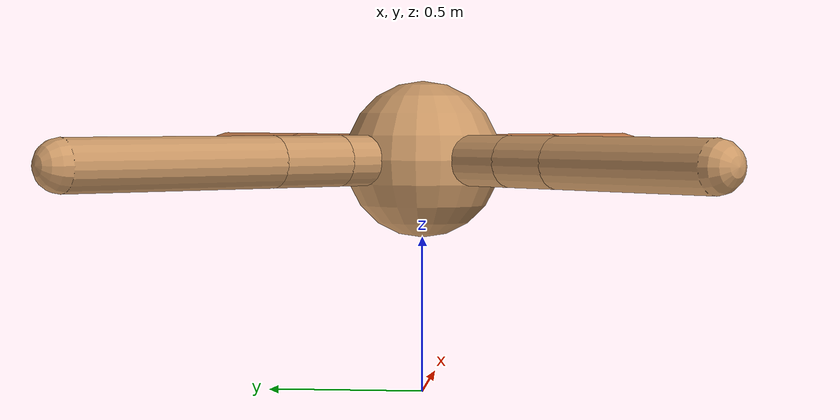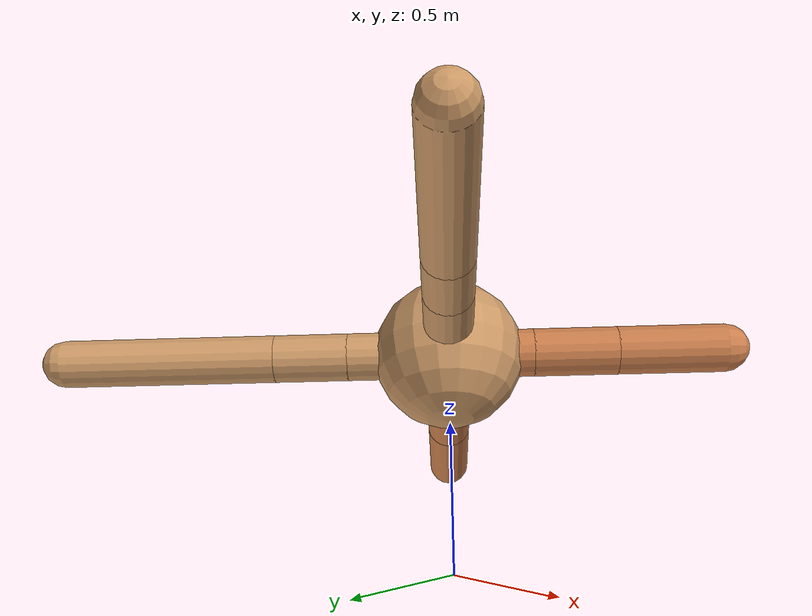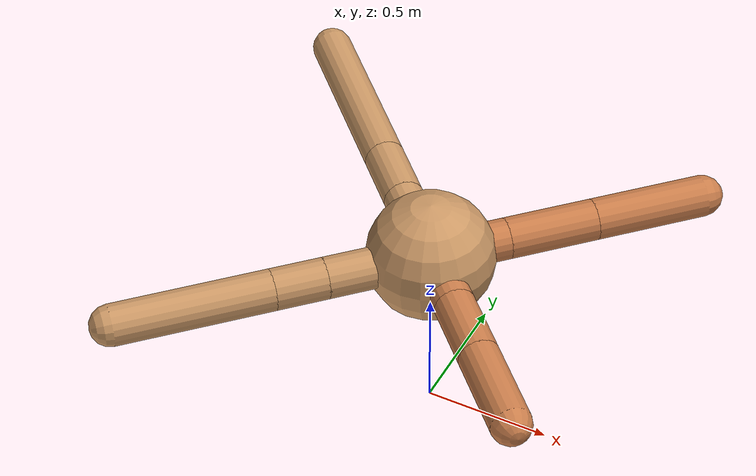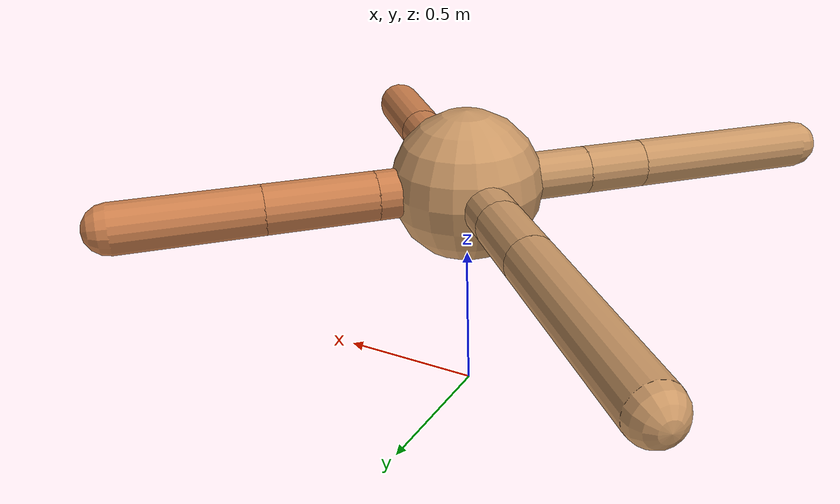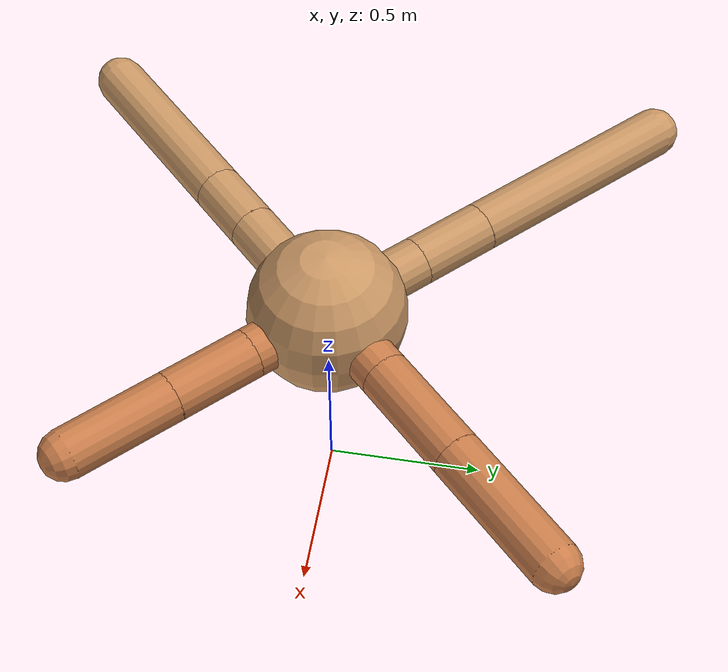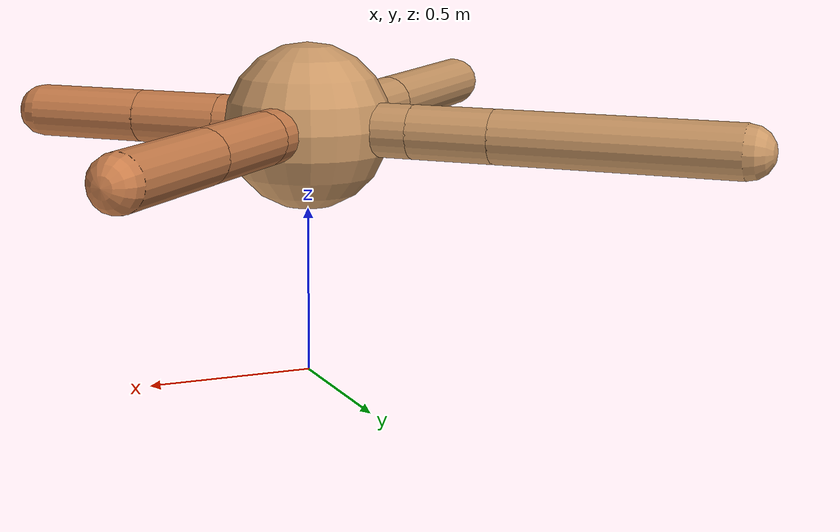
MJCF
<mujoco model="ant">
  <compiler angle="degree" coordinate="local" inertiafromgeom="true" />
  <option integrator="RK4" timestep="0.01" />
  <custom>
    <numeric data="0.0 0.0 0.55 1.0 0.0 0.0 0.0 0.0 1.0 0.0 -1.0 0.0 -1.0 0.0 1.0" name="init_qpos" />
  </custom>
  <default>
    <joint armature="1" damping="1" limited="true" />
    <geom conaffinity="0" condim="3" density="5.0" friction="1.5 0.1 0.1" margin="0.01" rgba="0.8 0.6 0.4 1" />
  </default>
  <worldbody>
    <body name="torso" pos="0 0 0.75">
      <geom name="torso_geom" pos="0 0 0" size="0.25" type="sphere" />

      <body name="front_left_leg" pos="0 0 0">
        <geom fromto="0.0 0.0 0.0 0.213469796083798 0.213469796083798 0.0" name="aux_1_geom" size="0.08" type="capsule" rgba=".8 .5 .3 1" />
        <body name="aux_1" pos="0.213469796083798 0.213469796083798 0.0">
          <joint axis="0 0 1" name="hip_1" pos="0.0 0.0 0.0" range="-40 40" type="hinge" />
          <geom fromto="0.0 0.0 0.0 0.24896940532145076 0.24896940532145076 0.0" name="left_leg_geom" size="0.08" type="capsule" rgba=".8 .5 .3 1" />
          <body pos="0.24896940532145076 0.24896940532145076 0.0" name="front_left_foot">
            <joint axis="-1 1 0" name="ankle_1" pos="0.0 0.0 0.0" range="30 100" type="hinge" />
            <geom fromto="0.0 0.0 0.0 0.3167592123567892 0.3167592123567892 0.0" name="left_ankle_geom" size="0.08" type="capsule" rgba=".8 .5 .3 1" />
          </body>
        </body>
      </body>
      <body name="front_right_leg" pos="0 0 0">
        <geom fromto="0.0 0.0 0.0 -0.23933368342074113 0.23933368342074113 0.0" name="aux_2_geom" size="0.08" type="capsule" />
        <body name="aux_2" pos="-0.23933368342074113 0.23933368342074113 0.0">
          <joint axis="0 0 1" name="hip_2" pos="0.0 0.0 0.0" range="-40 40" type="hinge" />
          <geom fromto="0.0 0.0 0.0 -0.1757616252842291 0.1757616252842291 0.0" name="right_leg_geom" size="0.08" type="capsule" />
          <body pos="-0.1757616252842291 0.1757616252842291 0.0" name="front_right_foot">
            <joint axis="1 1 0" name="ankle_2" pos="0.0 0.0 0.0" range="-100 -30" type="hinge" />
            <geom fromto="0.0 0.0 0.0 -0.5133589565015771 0.5133589565015771 0.0" name="right_ankle_geom" size="0.08" type="capsule" />
          </body>
        </body>
      </body>
      <body name="left_back_leg" pos="0 0 0">
        <geom fromto="0.0 0.0 0.0 -0.29342175729503606 -0.29342175729503606 0.0" name="aux_3_geom" size="0.08" type="capsule" />
        <body name="aux_3" pos="-0.29342175729503606 -0.29342175729503606 0.0">
          <joint axis="0 0 1" name="hip_3" pos="0.0 0.0 0.0" range="-40 40" type="hinge" />
          <geom fromto="0.0 0.0 0.0 -0.14451691622331692 -0.14451691622331692 0.0" name="back_leg_geom" size="0.08" type="capsule" />
          <body pos="-0.14451691622331692 -0.14451691622331692 0.0" name="left_back_foot">
            <joint axis="-1 1 0" name="ankle_3" pos="0.0 0.0 0.0" range="-100 -30" type="hinge" />
            <geom fromto="0.0 0.0 0.0 -0.43656986550326976 -0.43656986550326976 0.0" name="third_ankle_geom" size="0.08" type="capsule" />
          </body>
        </body>
      </body>
      <body name="right_back_leg" pos="0 0 0">
        <geom fromto="0.0 0.0 0.0 0.20089970666462867 -0.20089970666462867 0.0" name="aux_4_geom" size="0.08" type="capsule" rgba=".8 .5 .3 1" />
        <body name="aux_4" pos="0.20089970666462867 -0.20089970666462867 0.0">
          <joint axis="0 0 1" name="hip_4" pos="0.0 0.0 0.0" range="-40 40" type="hinge" />
          <geom fromto="0.0 0.0 0.0 0.19575771106549303 -0.19575771106549303 0.0" name="rightback_leg_geom" size="0.08" type="capsule" rgba=".8 .5 .3 1" />
          <body pos="0.19575771106549303 -0.19575771106549303 0.0" name="right_back_foot">
            <joint axis="1 1 0" name="ankle_4" pos="0.0 0.0 0.0" range="30 100" type="hinge" />
            <geom fromto="0.0 0.0 0.0 0.2502044813819787 -0.2502044813819787 0.0" name="fourth_ankle_geom" size="0.08" type="capsule" rgba=".8 .5 .3 1" />
          </body>
        </body>
      </body>
    </body>
  </worldbody>
  <actuator>
    <motor ctrllimited="true" ctrlrange="-1.0 1.0" joint="hip_4" gear="150" />
    <motor ctrllimited="true" ctrlrange="-1.0 1.0" joint="ankle_4" gear="150" />
    <motor ctrllimited="true" ctrlrange="-1.0 1.0" joint="hip_1" gear="150" />
    <motor ctrllimited="true" ctrlrange="-1.0 1.0" joint="ankle_1" gear="150" />
    <motor ctrllimited="true" ctrlrange="-1.0 1.0" joint="hip_2" gear="150" />
    <motor ctrllimited="true" ctrlrange="-1.0 1.0" joint="ankle_2" gear="150" />
    <motor ctrllimited="true" ctrlrange="-1.0 1.0" joint="hip_3" gear="150" />
    <motor ctrllimited="true" ctrlrange="-1.0 1.0" joint="ankle_3" gear="150" />
  </actuator>
</mujoco>
